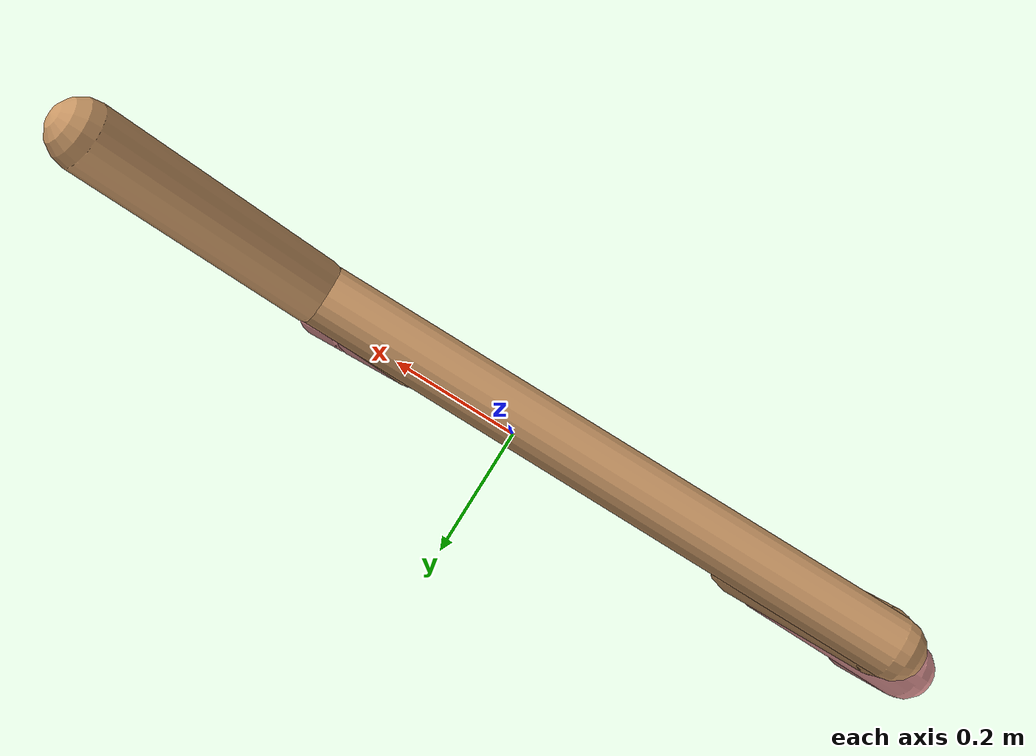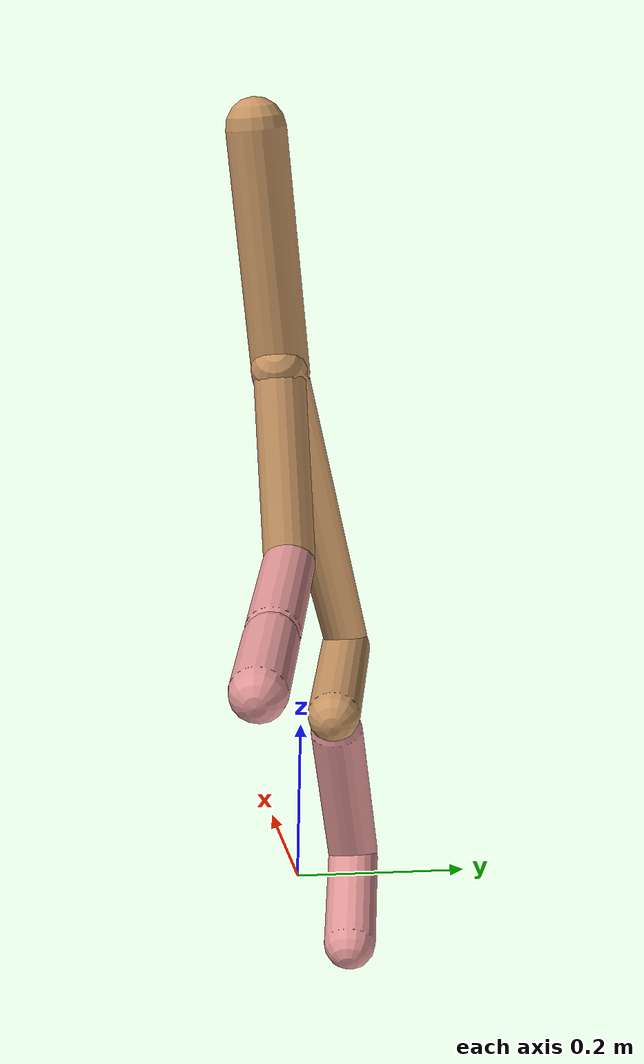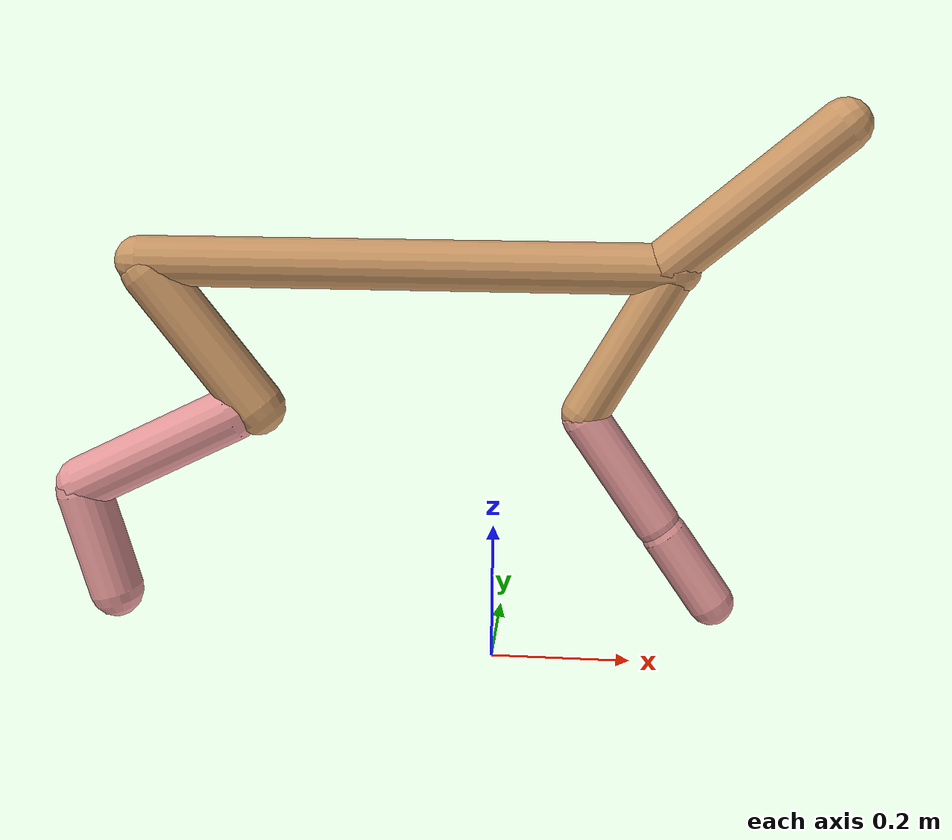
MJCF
<mujoco model="cheetah">
  <compiler angle="radian" coordinate="local" inertiafromgeom="true" settotalmass="14" />
  <default>
    <joint armature=".1" damping=".01" limited="true" solimplimit="0 .8 .03" solreflimit=".02 1" stiffness="8" />
    <geom conaffinity="0" condim="3" contype="1" friction="0.8 .1 .1" rgba="0.8 0.6 .4 1" solimp="0.0 0.8 0.01" solref="0.02 1" />
    <motor ctrllimited="true" ctrlrange="-1 1" />
  </default>
  <size nstack="300000" nuser_geom="1" />
  <option gravity="0 0 -9.81" timestep="0.01" />
  <worldbody>
    <body name="torso" pos="0.0 0.0 0.5772206112590141">
      <joint armature="0" axis="1 0 0" damping="0" limited="false" name="ignorex" pos="0 0 0" stiffness="0" type="slide" />
      <joint armature="0" axis="0 0 1" damping="0" limited="false" name="ignorez" pos="0 0 0" stiffness="0" type="slide" />
      <joint armature="0" axis="0 1 0" damping="0" limited="false" name="ignorey" pos="0 0 0" stiffness="0" type="hinge" />
      <geom fromto="-0.5 0.0 0.0 0.24613090130550808 0.0 0.0" name="torso" size="0.035758348005622345" type="capsule" />
      <geom axisangle="0 1 0 .87" name="head" pos="0.34613090130550805 0.0 0.1" size="0.03716881418339774 0.15" type="capsule" />

      <body name="bthigh" pos="-.5 0 0">
        <joint axis="0 1 0" damping="6" name="bthigh" pos="0 0 0" range="-.52 1.05" stiffness="240" type="hinge" />
        <geom axisangle="0 1 0 -3.8" name="bthigh" pos="0.08661052339530567 0.0 -0.11259368041389738" size="0.04001488111801461 0.12303962556600645" type="capsule" />
        <body name="bshin" pos="0.13322104679061134 0.0 -0.21518736082779474">
          <joint axis="0 1 0" damping="4.5" name="bshin" pos="0 0 0" range="-.785 .785" stiffness="180" type="hinge" />
          <geom axisangle="0 1 0 -2.03" name="bshin" pos="-0.11968073515347945 0.0 -0.059840367576739724" rgba="0.9 0.6 0.6 1" size="0.04001488111801461 0.1272823712751791" type="capsule" />
          <body name="bfoot" pos="-0.2393614703069589 0.0 -0.11968073515347945">
            <joint axis="0 1 0" damping="3" name="bfoot" pos="0 0 0" range="-.4 .785" stiffness="120" type="hinge" />
            <geom axisangle="0 1 0 -.27" name="bfoot" pos="0.02579358054874461 0.0 -0.08339924377427424" rgba="0.9 0.6 0.6 1" size="0.04001488111801461 0.07976361933244557" type="capsule" />
            <inertial mass="10" />
          </body>
        </body>
      </body>
      <body name="fthigh" pos="0.24613090130550808 0.0 0.0">
        <joint axis="0 1 0" damping="4.5" name="fthigh" pos="0 0 0" range="-1.5 0.8" stiffness="180" type="hinge" />
        <geom axisangle="0 1 0 .52" name="fthigh" pos="-0.06139326163502851 0.0 -0.10524559137433458" size="0.03305980972250128 0.11591876704754067" type="capsule" />
        <body name="fshin" pos="-0.12278652327005703 0.0 -0.21049118274866915">
          <joint axis="0 1 0" damping="3" name="fshin" pos="0 0 0" range="-1.2 1.1" stiffness="120" type="hinge" />
          <geom axisangle="0 1 0 -.6" name="fshin" pos="0.057029357463022026 0.0 -0.07896372571803048" rgba="0.9 0.6 0.6 1" size="0.03305980972250128 0.09238638576721286" type="capsule" />
          <body name="ffoot" pos="0.11405871492604405 0.0 -0.15792745143606096">
            <joint axis="0 1 0" damping="1.5" name="ffoot" pos="0 0 0" range="-3.1 -0.3" stiffness="60" type="hinge" />
            <geom axisangle="0 1 0 -.6" name="ffoot" pos="0.040138522953664914 0.0 -0.06243770237236765" rgba="0.9 0.6 0.6 1" size="0.03305980972250128 0.06100987739344246" type="capsule" />
            <inertial mass="10" />
          </body>
        </body>
      </body>
    </body>
  </worldbody>
  <actuator>
    <motor gear="120" joint="bthigh" name="bthigh" />
    <motor gear="90" joint="bshin" name="bshin" />
    <motor gear="60" joint="bfoot" name="bfoot" />
    <motor gear="120" joint="fthigh" name="fthigh" />
    <motor gear="60" joint="fshin" name="fshin" />
    <motor gear="30" joint="ffoot" name="ffoot" />
  </actuator>
</mujoco>
